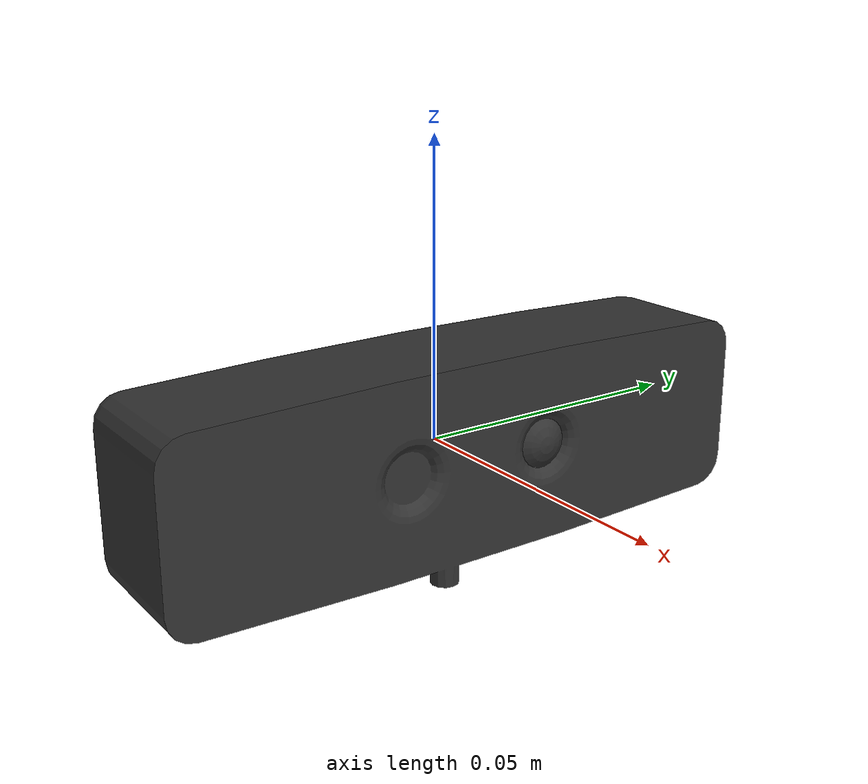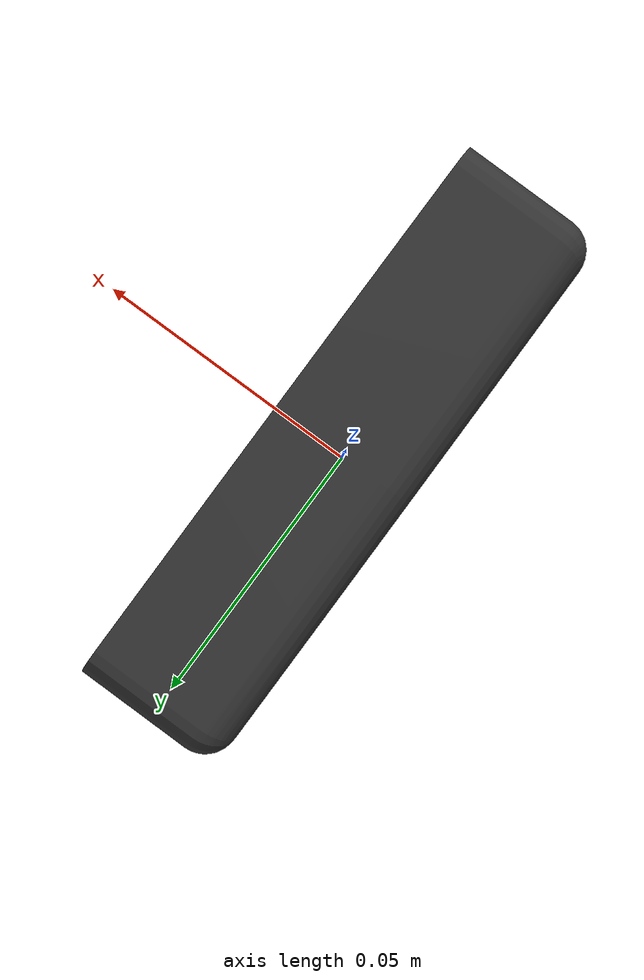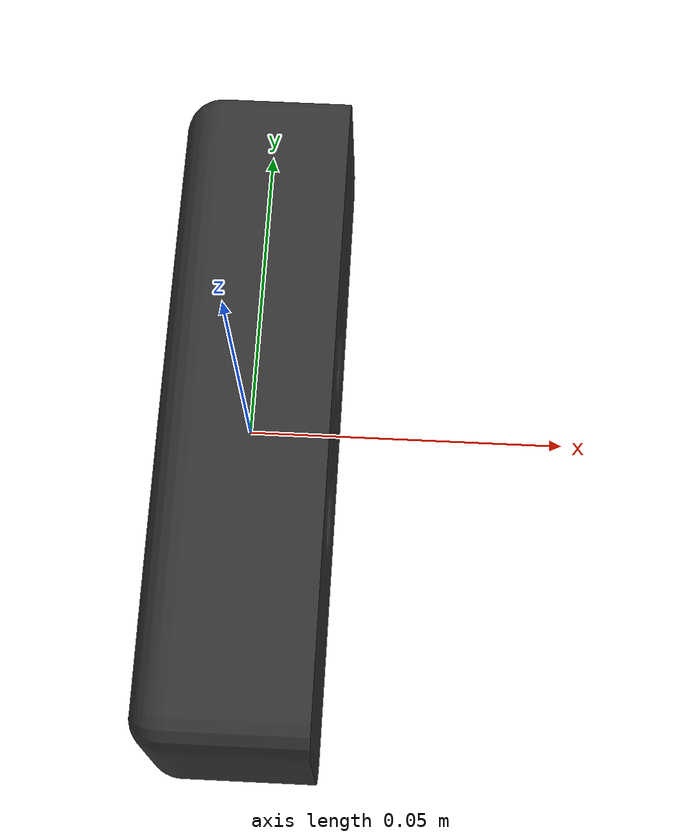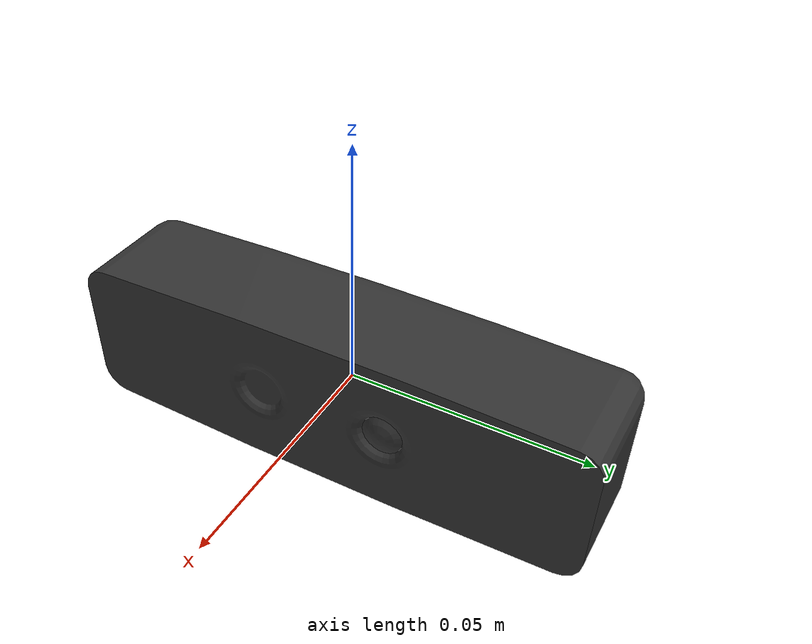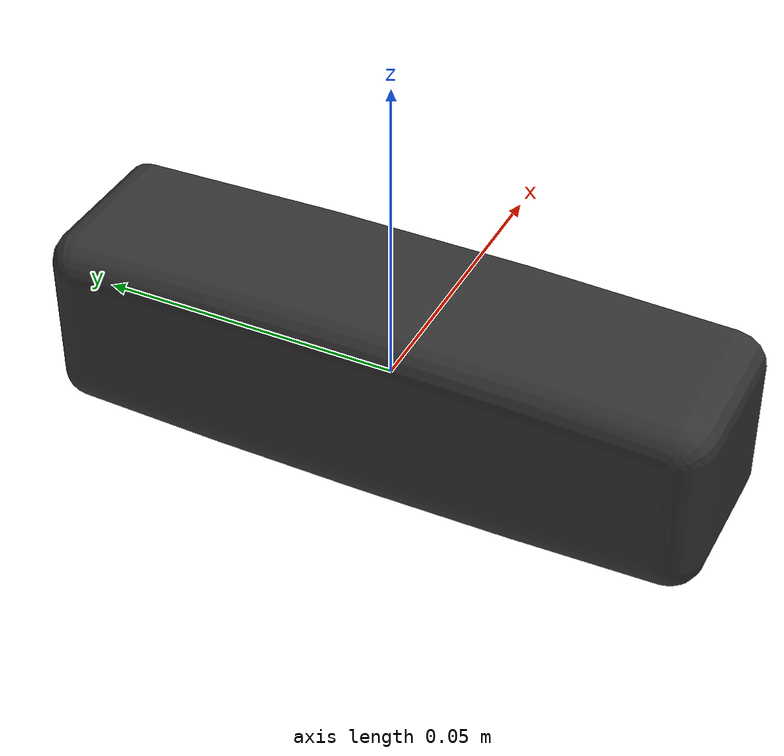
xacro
<robot name="Creative_Camera_link"><link name="Creative_Camera_link">
    <inertial>
      <origin rpy="0 0 0" xyz="0.000246466472824558 6.40214461760665E-06 -3.77569804070194E-05" />
      <mass value="0.0917411732955106" />
      <inertia ixx="9.42830385924344E-05" ixy="7.20275321596364E-09" ixz="-9.53710985095244E-09" iyy="1.31046061468615E-05" iyz="2.49172946580444E-11" izz="9.18985906934582E-05" />
    </inertial>
    <visual>
      <origin rpy="0 0 0" xyz="0 0 0" />
      <geometry>
        <mesh filename="package://robotican_description/komodo/meshes/Creative_Camera_link.STL" />
      </geometry>
      <material name="">
        <color rgba="0.2 0.2 0.2 1" />
      </material>
    </visual>
    <collision>
      <origin rpy="0 0 0" xyz="0 0 0" />
      <geometry>
        <mesh filename="package://robotican_description/komodo/meshes/Creative_Camera_link.STL" />
      </geometry>
    </collision>
  </link>
  </robot>
